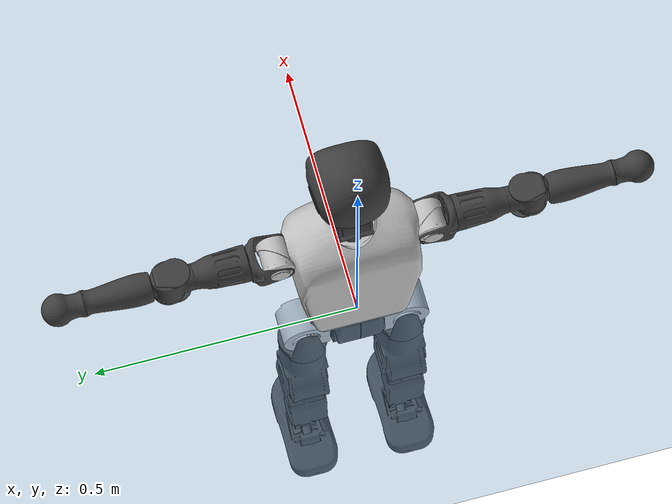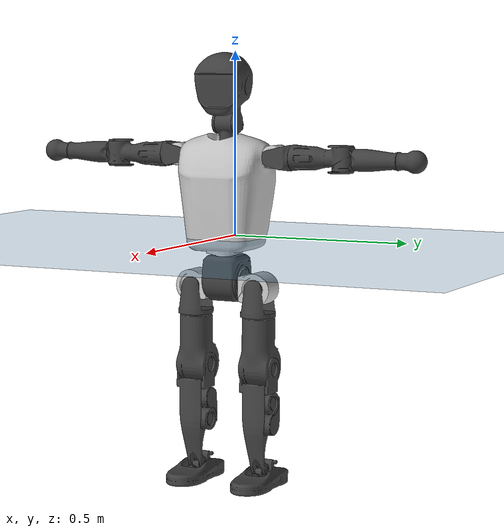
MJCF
<mujoco model="T1">
  <compiler angle="radian" assetdir="assets" balanceinertia="true" inertiafromgeom="false"/>

  <option timestep="0.005" density="1.2" viscosity="2e-05"/>

  <size nkey="1"/>

  <visual>
    <quality shadowsize="8192"/>
    <map shadowclip="0.5"/>
  </visual>

  <default>
    <default class="/">
      <joint armature="0.01" damping="0.01" frictionloss="0.1"/>
      <geom contype="0" conaffinity="0" group="1" solref="-1000 -80"/>
      <site size="0.01 0.005 0.005" group="5"/>
      <general forcelimited="true" biastype="affine" gainprm="25" biasprm="0 -25 -0.6"/>
      <default class="t1">
        <geom rgba="0.25 0.25 0.25 1"/>
        <default class="visual">
          <geom type="mesh" group="2"/>
        </default>
        <default class="collision">
          <geom group="3"/>
        </default>
        <default class="foot">
          <geom size="0.1115 0.05 0.015" type="box" condim="6" group="4" priority="1" solimp="0.015 1 0.015"/>
        </default>
        <default class="reward_collision_sphere">
          <geom group="5" rgba="1 0 0 1"/>
        </default>
      </default>
    </default>
  </default>

  <asset>
    <texture type="skybox" colorspace="auto" name="//unnamed_texture_0" builtin="gradient" rgb1="0.95 0.95 0.95" rgb2="0.95 0.95 0.95" width="100" height="600"/>
    <texture type="2d" colorspace="auto" name="texplane" builtin="checker" rgb1="0.345 0.575 0.748" rgb2="0.345 0.575 0.748" markrgb="1 1 1" width="512" height="512"/>
    <material name="MatPlane" class="/" texture="texplane" texuniform="true" texrepeat="2 2" specular="0.9"/>
    <mesh name="Trunk" class="/" file="Trunk.stl"/>
    <mesh name="H1" class="/" file="H1.stl"/>
    <mesh name="H2" class="/" file="H2.stl"/>
    <mesh name="AL1" class="/" file="AL1.stl"/>
    <mesh name="AL2" class="/" file="AL2.stl"/>
    <mesh name="AL3" class="/" file="AL3.stl"/>
    <mesh name="left_hand_link" class="/" file="left_hand_link.stl"/>
    <mesh name="AR1" class="/" file="AR1.stl"/>
    <mesh name="AR2" class="/" file="AR2.stl"/>
    <mesh name="AR3" class="/" file="AR3.stl"/>
    <mesh name="right_hand_link" class="/" file="right_hand_link.stl"/>
    <mesh name="Waist" class="/" file="Waist.stl"/>
    <mesh name="Hip_Pitch_Left" class="/" file="Hip_Pitch_Left.stl"/>
    <mesh name="Hip_Roll_Left" class="/" file="Hip_Roll_Left.stl"/>
    <mesh name="Hip_Yaw_Left" class="/" file="Hip_Yaw_Left.stl"/>
    <mesh name="Shank_Left" class="/" file="Shank_Left.stl"/>
    <mesh name="Ankle_Cross_Left" class="/" file="Ankle_Cross_Left.stl"/>
    <mesh name="left_foot_link" class="/" file="left_foot_link.stl"/>
    <mesh name="Hip_Pitch_Right" class="/" file="Hip_Pitch_Right.stl"/>
    <mesh name="Hip_Roll_Right" class="/" file="Hip_Roll_Right.stl"/>
    <mesh name="Hip_Yaw_Right" class="/" file="Hip_Yaw_Right.stl"/>
    <mesh name="Shank_Right" class="/" file="Shank_Right.stl"/>
    <mesh name="Ankle_Cross_Right" class="/" file="Ankle_Cross_Right.stl"/>
    <mesh name="right_foot_link" class="/" file="right_foot_link.stl"/>
  </asset>

  <worldbody>
    <geom name="floor" class="/" size="100 100 0.125" type="plane" group="0" material="MatPlane"/>
    <light name="toplight_shadow" class="/" pos="0 0 5" dir="0.0990148 0.0990148 -0.990148" type="directional" ambient="0.04 0.04 0.04" diffuse="0.55 0.55 0.55" specular="0.12 0.12 0.12"/>
    <light name="toplight_fill" class="/" pos="0 0 5" dir="0.0990148 0.0990148 -0.990148" type="directional" castshadow="false" ambient="0.04 0.04 0.04" diffuse="0.3 0.3 0.3" specular="0.08 0.08 0.08"/>
    <body name="trunk" childclass="t1" pos="-0.000233037 -0.00248593 0.00111811" quat="1 -7.21817e-05 4.12966e-05 0.000701216">
      <inertial pos="0.0403215 -0.000447937 0.106363" quat="0.999929 -0.00030039 -0.0109194 -0.00472265" mass="7.7457" diaginertia="0.0196462 0.0474333 0.0577505"/>
      <joint name="//unnamed_joint_0" type="free" armature="0" damping="0" frictionloss="0"/>
      <geom name="//unnamed_geom_1" class="visual" rgba="0.76 0.76 0.76 1" mesh="Trunk"/>
      <geom name="//unnamed_geom_2" class="collision" size="0.0661522 0.0882029 0.132304" pos="0.0441928 0 0.120835" type="box"/>
      <geom name="//unnamed_geom_3" class="reward_collision_sphere" size="0.101433" pos="0.0441928 0 0.100696"/>
      <geom name="//unnamed_geom_4" class="reward_collision_sphere" size="0.0132304" pos="0.0441928 0.0767192 0"/>
      <geom name="//unnamed_geom_5" class="reward_collision_sphere" size="0.0132304" pos="0.0441928 -0.0767192 0"/>
      <geom name="//unnamed_geom_6" class="reward_collision_sphere" size="0.0132304" pos="0.0441928 0.0965759 0.181253"/>
      <geom name="//unnamed_geom_7" class="reward_collision_sphere" size="0.0132304" pos="0.0441928 -0.0965759 0.181253"/>
      <site name="imu" pos="-0.00859366 -0.0135742 0.0022673" size="0.00882029"/>
      <camera name="track" pos="0 -1.80516 0" quat="0.707107 0.707107 0 0" mode="trackcom"/>
      <camera name="ego_camera" pos="0.0898587 0 0.422924" quat="-0.5 -0.5 0.5 0.5"/>
      <body name="H1" pos="0.0454624 0.000707962 0.245168" quat="1 0.000285022 0.00034331 -8.39023e-05">
        <inertial pos="-0.000470886 -0.00118429 0.0592966" quat="0.76865 -0.0164131 -0.00819191 0.639406" mass="0.300516" diaginertia="5.10192e-05 0.00013555 0.00015049"/>
        <joint name="AAHead_yaw" pos="0 0 0" axis="0.00664214 0.0114702 0.999912" stiffness="4.31385e-05" range="-1.60654 1.54976" armature="0.00938454" damping="0.009216" frictionloss="0.0789145"/>
        <geom name="//unnamed_geom_8" class="visual" mesh="H1"/>
        <body name="H2" pos="0.00198565 0.000898244 0.0626251" quat="1 0.000180931 0.000157132 7.32695e-05">
          <inertial pos="0.005149 -0.00182111 0.0995028" quat="0.988523 0.107462 -0.0696879 -0.0801111" mass="0.420594" diaginertia="0.000429594 0.00108254 0.0017222"/>
          <joint name="Head_pitch" pos="0 0 0" axis="-0.00152648 -0.999921 0.0124867" range="-1.20126 0.368318" armature="0.00834796" damping="0.00904175" frictionloss="0.0884025"/>
          <geom name="//unnamed_geom_9" class="visual" mesh="H2"/>
          <geom name="//unnamed_geom_10" class="collision" size="0.0705623" pos="0.00736547 0 0.110766"/>
          <geom name="//unnamed_geom_11" class="reward_collision_sphere" size="0.0793826" pos="0.0147309 0 0.100696"/>
        </body>
      </body>
      <body name="AL1" pos="0.0438791 0.096138 0.219676" quat="1 -0.000247195 0.000204109 9.58267e-05">
        <inertial pos="-0.00133237 0.0395767 -0.00269875" quat="0.507364 0.503972 -0.503025 0.485346" mass="0.375125" diaginertia="0.000303274 0.000800503 0.000316265"/>
        <joint name="Left_Shoulder_Pitch" pos="0 0 0" axis="-0.00446586 0.999898 0.0135477" stiffness="0.00208731" range="-3.31295 1.21789" armature="0.00922957" damping="0.0136766" frictionloss="0.084502"/>
        <geom name="//unnamed_geom_12" class="visual" rgba="0.76 0.76 0.76 1" mesh="AL1"/>
        <body name="AL2" pos="0.00214243 0.0413703 -0.00245962" quat="0.999999 0.0010201 -0.000146835 -0.000230397">
          <inertial pos="0.00275322 0.0316259 -0.000104372" quat="0.48869 0.511584 -0.488256 0.510949" mass="0.107547" diaginertia="8.74554e-05 0.000202102 0.000179533"/>
          <joint name="Left_Shoulder_Roll" pos="0 0 0" axis="-0.999892 0.00303519 0.0143894" range="-1.51699 1.75473" armature="0.00874921" damping="0" frictionloss="0.100192"/>
          <geom name="//unnamed_geom_13" class="visual" mesh="AL2"/>
          <body name="AL3" pos="0.00288491 0.0575389 0.00182281" quat="0.999999 -0.00101517 0.000553614 0.000378344">
            <inertial pos="-0.000110363 0.0744076 -5.70013e-05" quat="0.702237 0.711937 0.00283248 0.000914182" mass="0.712865" diaginertia="0.00277391 0.00782195 0.000613975"/>
            <joint name="Left_Elbow_Pitch" pos="0 0 0" axis="0.004722 -0.999924 0.0114108" range="-2.22238 2.21475" armature="0.0100814" damping="0" frictionloss="0.0984182"/>
            <geom name="//unnamed_geom_14" class="visual" mesh="AL3"/>
            <geom name="//unnamed_geom_15" class="collision" size="0.0264609 0.0661522" pos="0 0.0451289 0" quat="0.707105 0.707108 0 0" type="cylinder"/>
            <geom name="//unnamed_geom_16" class="reward_collision_sphere" size="0.031753"/>
            <body name="left_hand_link" pos="0.0016613 0.13345 -0.00158678" quat="1 0.000160636 -0.000717391 -0.000615506">
              <inertial pos="-0.000234518 0.0995913 -0.00199805" quat="0.709051 0.705149 -0.00123717 0.00296071" mass="0.227932" diaginertia="0.00178334 0.00492842 0.000219598"/>
              <joint name="Left_Elbow_Yaw" pos="0 0 0" axis="-0.00291743 -0.0128804 0.999913" stiffness="0.00628244" range="-2.4392 0.0137665" armature="0.00917771" damping="0.0127802" frictionloss="0.0943904"/>
              <geom name="//unnamed_geom_17" class="visual" mesh="left_hand_link"/>
              <geom name="//unnamed_geom_18" class="collision" size="0.0264609 0.0771775" pos="0 0.117335 0" quat="0.707105 0.707108 0 0" type="cylinder"/>
              <geom name="//unnamed_geom_19" class="reward_collision_sphere" size="0.0441014"/>
              <geom name="//unnamed_geom_20" class="reward_collision_sphere" size="0.030871" pos="0 0.0992836 0"/>
              <geom name="//unnamed_geom_21" class="reward_collision_sphere" size="0.030871" pos="0 0.194054 0"/>
            </body>
          </body>
        </body>
      </body>
      <body name="AR1" pos="0.0424569 -0.0951293 0.220513" quat="1 -0.000257754 0.000727041 -0.000300517">
        <inertial pos="-0.000153642 -0.0434511 0.00264182" quat="0.503196 0.495467 -0.506264 0.494978" mass="0.363697" diaginertia="0.000283668 0.000772382 0.00030775"/>
        <joint name="Right_Shoulder_Pitch" pos="0 0 0" axis="0.00285652 -0.999992 0.00285039" range="-1.21117 3.30863" armature="0.00812054" damping="0.00372555" frictionloss="0.0835209"/>
        <geom name="//unnamed_geom_22" class="visual" rgba="0.76 0.76 0.76 1" mesh="AR1"/>
        <body name="AR2" pos="0.000670663 -0.0387392 -0.000622155" quat="1 -0.000255881 -0.000257049 3.04269e-05">
          <inertial pos="0.00364392 -0.0341218 -0.00249015" quat="0.515685 0.486347 -0.507525 0.489851" mass="0.110149" diaginertia="8.3953e-05 0.000197901 0.00017509"/>
          <joint name="Right_Shoulder_Roll" pos="0 0 0" axis="-0.999956 -0.00922928 0.00162177" stiffness="0.0113507" range="-1.72526 1.62546" armature="0.00871911" damping="0" frictionloss="0.0874646"/>
          <geom name="//unnamed_geom_23" class="visual" mesh="AR2"/>
          <body name="AR3" pos="0.00178661 -0.054513 -0.00202658" quat="1 -0.000279398 0.000376709 -7.48002e-05">
            <inertial pos="-0.000474717 -0.0782752 0.00092155" quat="0.70776 0.706453 0.000106922 0.000406592" mass="0.697225" diaginertia="0.0027869 0.00784268 0.000650427"/>
            <joint name="Right_Elbow_Pitch" pos="0 0 0" axis="-0.000807527 0.999999 0.000625663" range="-2.26347 2.27332" armature="0.0100146" damping="0.00826719" frictionloss="0.0761309"/>
            <geom name="//unnamed_geom_24" class="visual" mesh="AR3"/>
            <geom name="//unnamed_geom_25" class="collision" size="0.0264609 0.0661522" pos="0 -0.0451289 0" quat="0.707105 0.707108 0 0" type="cylinder"/>
            <geom name="//unnamed_geom_26" class="reward_collision_sphere" size="0.031753"/>
            <body name="right_hand_link" pos="2.21736e-05 -0.133185 1.99592e-05" quat="1 -0.000764039 -0.000368095 0.000262298">
              <inertial pos="0.000616938 -0.0988986 -0.00191562" quat="0.712008 0.702091 -0.000729385 -0.0105935" mass="0.230567" diaginertia="0.00170261 0.00486665 0.000225956"/>
              <joint name="Right_Elbow_Yaw" pos="0 0 0" axis="-0.00276296 0.00259531 0.999993" range="-0.0555155 2.49148" armature="0.00914993" damping="0.0101553" frictionloss="0.0848476"/>
              <geom name="//unnamed_geom_27" class="visual" mesh="right_hand_link"/>
              <geom name="//unnamed_geom_28" class="collision" size="0.0264609 0.0771775" pos="0 -0.117335 0" quat="0.707105 0.707108 0 0" type="cylinder"/>
              <geom name="//unnamed_geom_29" class="reward_collision_sphere" size="0.0441014"/>
              <geom name="//unnamed_geom_30" class="reward_collision_sphere" size="0.030871" pos="0 -0.0992836 0"/>
              <geom name="//unnamed_geom_31" class="reward_collision_sphere" size="0.030871" pos="0 -0.194054 0"/>
            </body>
          </body>
        </body>
      </body>
      <body name="Waist" pos="0.0471404 -0.000739233 -0.117066" quat="1 0.000151991 0.000226743 -7.34239e-05">
        <inertial pos="0.000191749 8.31727e-05 0.00856915" quat="0.984308 0.00317867 -0.176432 -0.00014011" mass="1.73033" diaginertia="0.00112494 0.0031808 0.0049135"/>
        <joint name="Waist" pos="0 0 0" axis="0.0103456 -0.0108834 0.999887" range="-1.56691 1.57143" armature="0.00879988" damping="0.0239564" frictionloss="0.0766837"/>
        <geom name="//unnamed_geom_32" class="visual" mesh="Waist"/>
        <body name="Hip_Pitch_Left" pos="0.00302913 0.0976253 -0.000413494" quat="1 -4.56844e-05 -1.18302e-05 5.17587e-05">
          <inertial pos="0.00323121 -0.00617987 -0.021071" quat="0.972983 0.229706 0.0229146 -0.00387163" mass="0.719812" diaginertia="0.000393308 0.000880745 0.00130194"/>
          <joint name="Left_Hip_Pitch" pos="0 0 0" axis="-0.00114596 0.999991 0.00408338" range="-1.79811 1.62639" armature="0.00896405" damping="0" frictionloss="0.0928698"/>
          <geom name="//unnamed_geom_33" class="visual" rgba="0.76 0.76 0.76 1" mesh="Hip_Pitch_Left"/>
          <body name="Hip_Roll_Left" pos="0.00234262 -0.00117377 -0.0179467" quat="1 -0.000185821 -0.000210606 -0.000190788">
            <inertial pos="-0.000756454 0.00252961 -0.054575" quat="0.713883 -0.00895313 -0.00271723 0.700202" mass="0.254327" diaginertia="0.000378591 0.000854588 0.000516669"/>
            <joint name="Left_Hip_Roll" pos="0 0 0" axis="-0.999999 -0.0013971 0.000394923" range="-1.58064 0.211568" armature="0.00891677" damping="0.00665373" frictionloss="0.0788635"/>
            <geom name="//unnamed_geom_34" class="visual" mesh="Hip_Roll_Left"/>
            <geom name="//unnamed_geom_35" class="reward_collision_sphere" size="0.0485116"/>
            <body name="Hip_Yaw_Left" pos="-3.03565e-05 0.0015674 -0.0809359" quat="1 -0.00023129 -0.000298359 4.78423e-05">
              <inertial pos="-0.00451667 -0.000584324 -0.0891965" quat="0.703422 -0.0246881 -0.0354683 0.709457" mass="1.42477" diaginertia="0.00551533 0.0147974 0.00265895"/>
              <joint name="Left_Hip_Yaw" pos="0 0 0" axis="0.011637 0.00460106 -0.999922" range="-0.990587 0.959261" armature="0.00891606" damping="0.00679139" frictionloss="0.0905172"/>
              <geom name="//unnamed_geom_36" class="visual" mesh="Hip_Yaw_Left"/>
              <geom name="//unnamed_geom_37" class="collision" size="0.0441014 0.0705623" type="cylinder"/>
              <body name="Shank_Left" pos="-0.00702964 0.00216471 -0.138274" quat="1 2.1024e-05 0.000279248 0.000385461">
                <inertial pos="-0.00548194 -0.00245113 -0.125441" quat="0.9976 0.00288173 -0.0272544 0.0635812" mass="1.18502" diaginertia="0.00774555 0.0206639 0.00198229"/>
                <joint name="Left_Knee_Pitch" pos="0 0 0" axis="-0.00691296 0.999965 -0.00468109" range="0.0193655 2.3444" armature="0.00865058" damping="0.0165827" frictionloss="0.0989387"/>
                <geom name="//unnamed_geom_38" class="visual" mesh="Shank_Left"/>
                <geom name="//unnamed_geom_39" class="collision" size="0.0441014 0.0661522" pos="0 0 -0.120835" type="cylinder"/>
                <geom name="//unnamed_geom_40" class="reward_collision_sphere" size="0.0573319"/>
                <body name="Ankle_Cross_Left" pos="-0.000634797 -0.00159956 -0.284238" quat="1 2.95639e-05 6.7316e-05 5.03584e-05">
                  <inertial pos="-0.0027536 1.04688e-05 -0.00664826" quat="0.441432 0.550246 0.549396 0.447807" mass="0.0473089" diaginertia="6.27554e-06 1.43985e-05 1.14812e-05"/>
                  <joint name="Left_Ankle_Pitch" pos="0 0 0" axis="-0.0101218 0.999884 -0.0114154" range="-0.869079 0.368186" armature="0.00877078" damping="0.00442495" frictionloss="0.0849108"/>
                  <geom name="//unnamed_geom_41" class="visual" mesh="Ankle_Cross_Left"/>
                  <body name="left_foot_link" pos="0.000265144 0.00105702 -0.0121474" quat="0.999999 -0.000501023 -0.000275374 -0.00125695">
                    <inertial pos="0.00266718 0.000839405 -0.00923838" quat="0.0116052 0.621327 -0.00496404 0.78345" mass="0.475661" diaginertia="0.000588756 0.00144232 0.00221581"/>
                    <joint name="Left_Ankle_Roll" pos="0 0 0" axis="-0.999997 0.0023061 -0.000300802" range="-0.445502 0.41688" armature="0.00882196" damping="0" frictionloss="0.0877987"/>
                    <geom name="//unnamed_geom_42" class="visual" mesh="left_foot_link"/>
                    <geom name="left_foot" class="foot" size="0.108138 0.0408158 0.0120687" pos="0.00736547 0 -0.0151044"/>
                    <geom name="//unnamed_geom_44" class="reward_collision_sphere" size="0.0458655" pos="0.00736547 0 -0.0151044"/>
                    <geom name="//unnamed_geom_45" class="reward_collision_sphere" size="0.0264609" pos="0.0699719 -0.0207593 -0.0151044"/>
                    <geom name="//unnamed_geom_46" class="reward_collision_sphere" size="0.0264609" pos="-0.0515583 -0.0207593 -0.0151044"/>
                    <site name="left_foot" class="foot" pos="0.00736547 0 -0.0151044" size="0.00882029"/>
                  </body>
                </body>
              </body>
            </body>
          </body>
        </body>
        <body name="Hip_Pitch_Right" pos="-0.00306347 -0.0965613 0.000839446" quat="0.999999 0.000456418 -0.00078314 0.000984799">
          <inertial pos="-0.00101486 0.00754849 -0.015439" quat="0.973431 -0.228442 0.015194 -0.00385236" mass="0.720465" diaginertia="0.000397127 0.000892208 0.00134153"/>
          <joint name="Right_Hip_Pitch" pos="0 0 0" axis="-0.00304622 -0.999995 0.000260276" stiffness="0.000220156" range="-1.57303 1.80643" armature="0.0088714" damping="0" frictionloss="0.0978356"/>
          <geom name="//unnamed_geom_47" class="visual" rgba="0.76 0.76 0.76 1" mesh="Hip_Pitch_Right"/>
          <body name="Hip_Roll_Right" pos="0.00236714 0.00123295 -0.0206742" quat="1 -0.000172051 6.66819e-05 -0.000378336">
            <inertial pos="-0.00160102 -0.00138492 -0.0564447" quat="0.705219 -0.00476575 -0.0100381 0.708903" mass="0.271468" diaginertia="0.000373751 0.000902339 0.000528583"/>
            <joint name="Right_Hip_Roll" pos="0 0 0" axis="-0.999978 0.000759774 0.00666417" stiffness="0.000157667" range="-0.232655 1.59321" armature="0.00933457" damping="0.00327401" frictionloss="0.0835718"/>
            <geom name="//unnamed_geom_48" class="visual" mesh="Hip_Roll_Right"/>
            <geom name="//unnamed_geom_49" class="reward_collision_sphere" size="0.0485116"/>
            <body name="Hip_Yaw_Right" pos="-0.000888105 0.000406406 -0.0823051" quat="1 0.000229507 9.8569e-05 5.14056e-05">
              <inertial pos="-0.00509998 -0.00312409 -0.0872736" quat="0.710727 -0.031803 -0.0344835 0.701903" mass="1.5353" diaginertia="0.0055802 0.0160851 0.00268132"/>
              <joint name="Right_Hip_Yaw" pos="0 0 0" axis="-0.000376839 -0.00116245 -0.999999" stiffness="0.0108698" range="-0.978288 0.997921" armature="0.00762414" damping="0" frictionloss="0.0929467"/>
              <geom name="//unnamed_geom_50" class="visual" mesh="Hip_Yaw_Right"/>
              <geom name="//unnamed_geom_51" class="collision" size="0.0441014 0.0705623" type="cylinder"/>
              <body name="Shank_Right" pos="-0.00751999 -0.000140409 -0.135588" quat="1 -0.000124426 0.000173443 8.43004e-05">
                <inertial pos="-0.00169126 0.00214034 -0.123867" quat="0.999233 0.00010794 -0.0317602 -0.022912" mass="1.27" diaginertia="0.00811851 0.0216653 0.00206907"/>
                <joint name="Right_Knee_Pitch" pos="0 0 0" axis="0.00433251 -0.999981 -0.00429705" range="-2.34315 -0.00762432" armature="0.00845117" damping="0.00247177" frictionloss="0.0915605"/>
                <geom name="//unnamed_geom_52" class="visual" mesh="Shank_Right"/>
                <geom name="//unnamed_geom_53" class="collision" size="0.0441014 0.0661522" pos="0 0 -0.120835" type="cylinder"/>
                <geom name="//unnamed_geom_54" class="reward_collision_sphere" size="0.0573319"/>
                <body name="Ankle_Cross_Right" pos="0.0020266 -0.000818002 -0.281866" quat="1 -6.08117e-05 -0.000337615 -0.000130549">
                  <inertial pos="-0.0031447 0.00160399 -0.00782605" quat="0.443507 0.552772 0.552469 0.438774" mass="0.0486443" diaginertia="6.46814e-06 1.54134e-05 1.15431e-05"/>
                  <joint name="Right_Ankle_Pitch" pos="0 0 0" axis="0.0119708 -0.999902 0.00724614" range="-0.344716 0.875198" armature="0.00846581" damping="0.00200656" frictionloss="0.085623"/>
                  <geom name="//unnamed_geom_55" class="visual" mesh="Ankle_Cross_Right"/>
                  <body name="right_foot_link" pos="0.000632665 -0.00365789 -0.00963522" quat="1 9.68398e-05 0.00019032 5.43414e-05">
                    <inertial pos="0.00265055 -0.000298706 -0.00735331" quat="0.00693074 0.618931 -0.00925872 0.78536" mass="0.469116" diaginertia="0.000603973 0.00142927 0.00224202"/>
                    <joint name="Right_Ankle_Roll" pos="0 0 0" axis="-0.9999 0.000176762 0.0141283" range="-0.437369 0.440348" armature="0.00879493" damping="0.00516181" frictionloss="0.0761463"/>
                    <geom name="//unnamed_geom_56" class="visual" mesh="right_foot_link"/>
                    <geom name="right_foot" class="foot" size="0.101855 0.0406547 0.012422" pos="0.00736547 0 -0.0151044"/>
                    <geom name="//unnamed_geom_58" class="reward_collision_sphere" size="0.0352812"/>
                    <geom name="//unnamed_geom_59" class="reward_collision_sphere" size="0.0264609" pos="0.00736547 0 -0.0151044"/>
                    <geom name="//unnamed_geom_60" class="reward_collision_sphere" size="0.0264609" pos="0.0699719 0.0207593 -0.0151044"/>
                    <geom name="//unnamed_geom_61" class="reward_collision_sphere" size="0.0264609" pos="-0.0515583 0.0207593 -0.0151044"/>
                    <site name="right_foot" class="foot" pos="0.00736547 0 -0.0151044" size="0.00882029"/>
                  </body>
                </body>
              </body>
            </body>
          </body>
        </body>
      </body>
    </body>
  </worldbody>

  <contact>
    <pair class="/" geom1="floor" geom2="left_foot" name="//unnamed_contact_0"/>
    <pair class="/" geom1="floor" geom2="right_foot" name="//unnamed_contact_1"/>
  </contact>

  <actuator>
    <general name="AAHead_yaw" class="/" joint="AAHead_yaw" forcerange="-5.55049 5.55049" gainprm="22.4364" biasprm="0 -22.4364 -0.499933"/>
    <general name="Head_pitch" class="/" joint="Head_pitch" forcerange="-6.15577 6.15577" gainprm="22.4364" biasprm="0 -22.4364 -0.499933"/>
    <general name="Left_Shoulder_Pitch" class="/" joint="Left_Shoulder_Pitch" forcerange="-16.0791 16.0791" gainprm="22.4364" biasprm="0 -22.4364 -0.499933"/>
    <general name="Left_Shoulder_Roll" class="/" joint="Left_Shoulder_Roll" forcerange="-15.7294 15.7294" gainprm="22.4364" biasprm="0 -22.4364 -0.499933"/>
    <general name="Left_Elbow_Pitch" class="/" joint="Left_Elbow_Pitch" forcerange="-17.3732 17.3732" gainprm="22.4364" biasprm="0 -22.4364 -0.499933"/>
    <general name="Left_Elbow_Yaw" class="/" joint="Left_Elbow_Yaw" forcerange="-17.5285 17.5285" gainprm="22.4364" biasprm="0 -22.4364 -0.499933"/>
    <general name="Right_Shoulder_Pitch" class="/" joint="Right_Shoulder_Pitch" forcerange="-15.8736 15.8736" gainprm="22.4364" biasprm="0 -22.4364 -0.499933"/>
    <general name="Right_Shoulder_Roll" class="/" joint="Right_Shoulder_Roll" forcerange="-17.3339 17.3339" gainprm="22.4364" biasprm="0 -22.4364 -0.499933"/>
    <general name="Right_Elbow_Pitch" class="/" joint="Right_Elbow_Pitch" forcerange="-16.9027 16.9027" gainprm="22.4364" biasprm="0 -22.4364 -0.499933"/>
    <general name="Right_Elbow_Yaw" class="/" joint="Right_Elbow_Yaw" forcerange="-14.4043 14.4043" gainprm="22.4364" biasprm="0 -22.4364 -0.499933"/>
    <general name="Waist" class="/" joint="Waist" forcerange="-26.5716 26.5716" gainprm="22.4364" biasprm="0 -22.4364 -0.499933"/>
    <general name="Left_Hip_Pitch" class="/" joint="Left_Hip_Pitch" forcerange="-41.8542 41.8542" gainprm="22.4364" biasprm="0 -22.4364 -0.499933"/>
    <general name="Left_Hip_Roll" class="/" joint="Left_Hip_Roll" forcerange="-27.3076 27.3076" gainprm="22.4364" biasprm="0 -22.4364 -0.499933"/>
    <general name="Left_Hip_Yaw" class="/" joint="Left_Hip_Yaw" forcerange="-26.025 26.025" gainprm="22.4364" biasprm="0 -22.4364 -0.499933"/>
    <general name="Left_Knee_Pitch" class="/" joint="Left_Knee_Pitch" forcerange="-52.7513 52.7513" gainprm="22.4364" biasprm="0 -22.4364 -0.499933"/>
    <general name="Left_Ankle_Pitch" class="/" joint="Left_Ankle_Pitch" forcerange="-17.0886 17.0886" gainprm="22.4364" biasprm="0 -22.4364 -0.499933"/>
    <general name="Left_Ankle_Roll" class="/" joint="Left_Ankle_Roll" forcerange="-13.2101 13.2101" gainprm="22.4364" biasprm="0 -22.4364 -0.499933"/>
    <general name="Right_Hip_Pitch" class="/" joint="Right_Hip_Pitch" forcerange="-39.4869 39.4869" gainprm="22.4364" biasprm="0 -22.4364 -0.499933"/>
    <general name="Right_Hip_Roll" class="/" joint="Right_Hip_Roll" forcerange="-26.37 26.37" gainprm="22.4364" biasprm="0 -22.4364 -0.499933"/>
    <general name="Right_Hip_Yaw" class="/" joint="Right_Hip_Yaw" forcerange="-26.9117 26.9117" gainprm="22.4364" biasprm="0 -22.4364 -0.499933"/>
    <general name="Right_Knee_Pitch" class="/" joint="Right_Knee_Pitch" forcerange="-50.9415 50.9415" gainprm="22.4364" biasprm="0 -22.4364 -0.499933"/>
    <general name="Right_Ankle_Pitch" class="/" joint="Right_Ankle_Pitch" forcerange="-16.0913 16.0913" gainprm="22.4364" biasprm="0 -22.4364 -0.499933"/>
    <general name="Right_Ankle_Roll" class="/" joint="Right_Ankle_Roll" forcerange="-13.993 13.993" gainprm="22.4364" biasprm="0 -22.4364 -0.499933"/>
  </actuator>

  <sensor>
    <gyro site="imu" name="imu_angular_velocity"/>
    <velocimeter site="imu" name="imu_linear_velocity"/>
    <framelinvel objtype="site" objname="left_foot" name="left_foot_global_linear_velocity"/>
    <framelinvel objtype="site" objname="right_foot" name="right_foot_global_linear_velocity"/>
  </sensor>

  <keyframe>
    <key name="home" qpos="0 0 0.6385 1 0 0 0 0 0 0 1.4 0 -0.4 0 -1.4 0 0.4 0 -0.4 0 0 0.8 -0.4 0 0.4 0 0 -0.8 0.4 0"/>
  </keyframe>
</mujoco>
